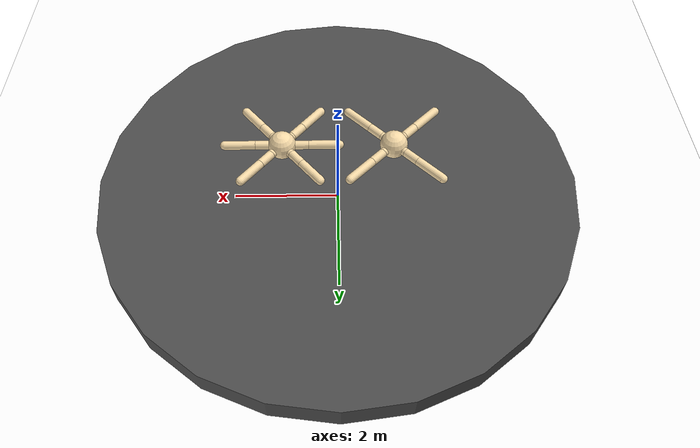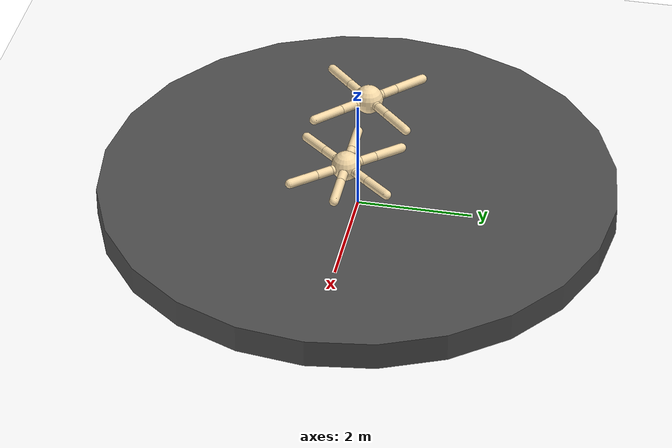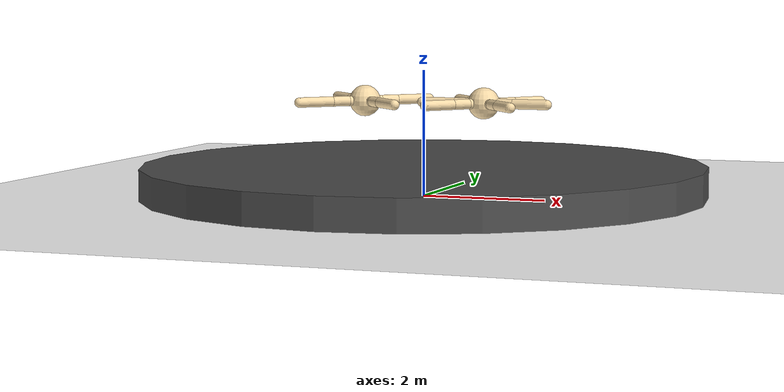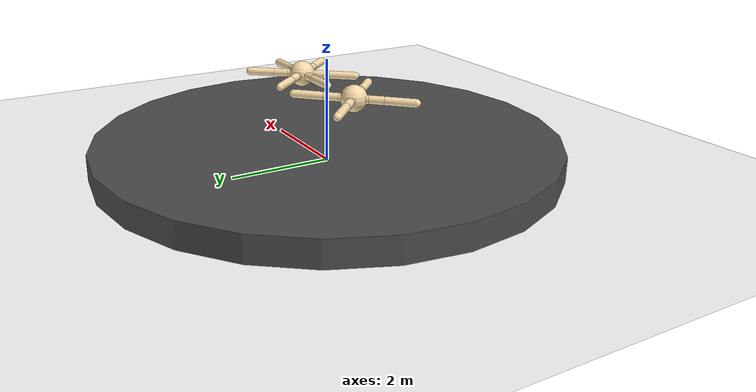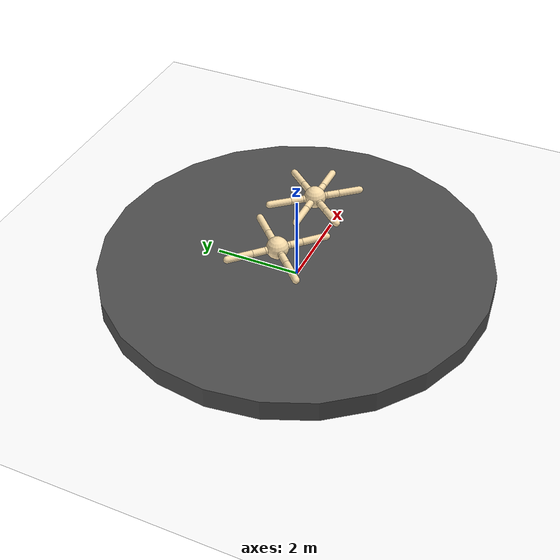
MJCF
<mujoco model="mutiagent_world">
  <compiler angle="degree" coordinate="local" inertiafromgeom="true" />
  <option integrator="RK4" timestep="0.003" solver="PGS" iterations="1000" />
  <default>
    <joint armature="1" damping="1" limited="true" />
  <default class="agent0"><joint armature="1" damping="1" limited="true" />
    <geom conaffinity="0" condim="3" density="5.0" friction="1 0.5 0.5" margin="0.01" rgba="0.98 0.87 0.67 1" material="geom" contype="1" />
    <motor ctrllimited="true" ctrlrange="-.4 .4" />
</default><default class="agent1"><geom conaffinity="1" condim="3" density="5.0" friction="1 0.5 0.5" margin="0.01" rgba="0.98 0.87 0.67 1" material="geom" contype="0" />
    <motor ctrllimited="true" ctrlrange="-1. 1." />
    <joint armature="1" damping="1" limited="true" />
  </default></default>
  <visual>
    <headlight ambient=".1 .1 .1" diffuse=".6 .6 .6" specular="0.3 0.3 0.3" />
    <map znear=".01" />
    <quality shadowsize="16384" />
  </visual>
  <asset>
    <texture builtin="gradient" height="100" rgb1="1 1 1" rgb2="0 0 0" type="skybox" width="100" />
    <texture builtin="flat" height="1278" mark="cross" markrgb="0 0 0" name="texgeom" random="0.01" rgb1="0.8 0.6 0.4" rgb2="0.8 0.6 0.4" type="cube" width="127" />
    <texture builtin="checker" height="100" name="texplane" rgb1="0.5 0.5 0.5" rgb2="0.5 0.5 0.5" type="2d" width="100" markrgb="0.2 0.2 0.2" mark="edge" />
    <texture name="MatPlane" type="2d" builtin="checker" rgb1=".5 .5 .5" rgb2=".5 .5 .5" width="300" height="300" mark="edge" markrgb="0.1 0.1 0.1" />
    <material name="MatPlane" texture="MatPlane" texrepeat="2 2" texuniform="true" reflectance=".2" />
    <material name="geom" texture="texgeom" texuniform="true" />
  </asset>
  <worldbody>
    <light cutoff="100" diffuse="1 1 1" dir="-0 0 -1.3" directional="true" exponent="1" pos="0 0 1.3" specular=".1 .1 .1" />
    <geom contype="1" conaffinity="1" friction="1 .1 .1" condim="3" material="MatPlane" name="floor" pos="0 0 0" rgba="1 1 1 1" size="20 20 0.125" type="plane" />
    <geom fromto="4 -5 0  4 +5 0" name="rightgoal" rgba="0.6 0.0 0.0 0" size=".03" type="cylinder" />
    <geom fromto="-4 -5 0  -4 +5 0" name="leftgoal" rgba="0.6 0.0 0.0 0" size=".03" type="cylinder" />
    <geom conaffinity="1" condim="3" contype="1" friction="1 .1 .1" name="arena" size="4.5 .25" type="cylinder" pos="0 0 0.25" rgba="0.3 0.3 0.3 1" />
  <body name="agent0/torso" pos="-1 0 1.5" euler="0 0 0">
  <geom name="agent0/torso_geom" pos="0 0 0" size="0.25" type="sphere" class="agent0" />
  <joint armature="0" damping="0" limited="false" margin="0.01" name="agent0/root" pos="0 0 0" range="-30 30" type="free" />
  <body name="agent0/front_left_leg" pos="0 0 0">
    <geom fromto="0.0 0.0 0.0 0.2 0.2 0.0" name="agent0/aux_1_geom" size="0.08" type="capsule" class="agent0" />
    <body name="agent0/aux_1" pos="0.2 0.2 0">
      <joint axis="0 0 1" name="agent0/hip_1" pos="0.0 0.0 0.0" range="-30 30" type="hinge" />
      <geom fromto="0.0 0.0 0.0 0.2 0.2 0.0" name="agent0/left_leg_geom" size="0.08" type="capsule" class="agent0" />
      <body pos="0.2 0.2 0" name="agent0/anon1934879561">
        <joint axis="-1 1 0" name="agent0/ankle_1" pos="0.0 0.0 0.0" range="30 70" type="hinge" />
        <geom fromto="0.0 0.0 0.0 0.4 0.4 0.0" name="agent0/left_ankle_geom" size="0.08" type="capsule" class="agent0" />
      </body>
    </body>
  </body>
  <body name="agent0/front_right_leg" pos="0 0 0">
    <geom fromto="0.0 0.0 0.0 -0.2 0.2 0.0" name="agent0/aux_2_geom" size="0.08" type="capsule" class="agent0" />
    <body name="agent0/aux_2" pos="-0.2 0.2 0">
      <joint axis="0 0 1" name="agent0/hip_2" pos="0.0 0.0 0.0" range="-30 30" type="hinge" />
      <geom fromto="0.0 0.0 0.0 -0.2 0.2 0.0" name="agent0/right_leg_geom" size="0.08" type="capsule" class="agent0" />
      <body pos="-0.2 0.2 0" name="agent0/anon8646907154">
        <joint axis="1 1 0" name="agent0/ankle_2" pos="0.0 0.0 0.0" range="-70 -30" type="hinge" />
        <geom fromto="0.0 0.0 0.0 -0.4 0.4 0.0" name="agent0/right_ankle_geom" size="0.08" type="capsule" class="agent0" />
      </body>
    </body>
  </body>
  <body name="agent0/back_leg" pos="0 0 0">
    <geom fromto="0.0 0.0 0.0 -0.2 -0.2 0.0" name="agent0/aux_3_geom" size="0.08" type="capsule" class="agent0" />
    <body name="agent0/aux_3" pos="-0.2 -0.2 0">
      <joint axis="0 0 1" name="agent0/hip_3" pos="0.0 0.0 0.0" range="-30 30" type="hinge" />
      <geom fromto="0.0 0.0 0.0 -0.2 -0.2 0.0" name="agent0/back_leg_geom" size="0.08" type="capsule" class="agent0" />
      <body pos="-0.2 -0.2 0" name="agent0/anon5950318586">
        <joint axis="-1 1 0" name="agent0/ankle_3" pos="0.0 0.0 0.0" range="-70 -30" type="hinge" />
        <geom fromto="0.0 0.0 0.0 -0.4 -0.4 0.0" name="agent0/third_ankle_geom" size="0.08" type="capsule" class="agent0" />
      </body>
    </body>
  </body>
  <body name="agent0/right_back_leg" pos="0 0 0">
    <geom fromto="0.0 0.0 0.0 0.2 -0.2 0.0" name="agent0/aux_4_geom" size="0.08" type="capsule" class="agent0" />
    <body name="agent0/aux_4" pos="0.2 -0.2 0">
      <joint axis="0 0 1" name="agent0/hip_4" pos="0.0 0.0 0.0" range="-30 30" type="hinge" />
      <geom fromto="0.0 0.0 0.0 0.2 -0.2 0.0" name="agent0/rightback_leg_geom" size="0.08" type="capsule" class="agent0" />
      <body pos="0.2 -0.2 0" name="agent0/anon68574554">
        <joint axis="1 1 0" name="agent0/ankle_4" pos="0.0 0.0 0.0" range="30 70" type="hinge" />
        <geom fromto="0.0 0.0 0.0 0.4 -0.4 0.0" name="agent0/fourth_ankle_geom" size="0.08" type="capsule" class="agent0" />
      </body>
    </body>
  </body>
</body>

<body name="agent1/0" pos="1 0 1.5" euler="0 0 180">
      <geom pos="0 0 0" size="0.25" type="sphere" class="agent1" name="agent1/anon991681410" />
      <joint armature="0" damping="0" limited="false" margin="0.01" name="agent1/0_joint" pos="0 0 0" type="free" />

      <body name="agent1/1" pos="0 0 0">
        <geom fromto="0 0 0 0.18 0.215 0" size="0.08" type="capsule" class="agent1" name="agent1/anon3578544904" />
        <body name="agent1/11" pos="0.18 0.215 0">
          <joint axis="0 0 1" name="agent1/11_joint" pos="0 0 0" range="-30 30" type="hinge" />
          <geom fromto="0 0 0 0.18 0.215 0" size="0.08" type="capsule" class="agent1" name="agent1/anon9334530083" />
          <body name="agent1/111" pos="0.18 0.215 0">
            <joint axis="-1 1 0" name="agent1/111_joint" pos="0 0 0" range="30 70" type="hinge" />
            <geom fromto="0 0 0 0.324 0.387 0" size="0.08" type="capsule" class="agent1" name="agent1/anon5974559825" />
          </body>
        </body>
      </body>

      <body name="agent1/2" pos="0 0 0">
        <geom fromto="0 0 0 -0.18 0.215 0" size="0.08" type="capsule" class="agent1" name="agent1/anon6120997886" />
        <body name="agent1/12" pos="-0.18 0.215 0">
          <joint axis="0 0 1" name="agent1/12_joint" pos="0 0 0" range="-30 30" type="hinge" />
          <geom fromto="0 0 0 -0.18 0.215 0" size="0.08" type="capsule" class="agent1" name="agent1/anon5188069942" />
          <body name="agent1/112" pos="-0.18 0.215 0">
            <joint axis="1 1 0" name="agent1/112_joint" pos="0 0 0" range="-70 -30" type="hinge" />
            <geom fromto="0 0 0 -0.324 0.387 0" size="0.08" type="capsule" class="agent1" name="agent1/anon6733221636" />
          </body>
        </body>
      </body>

      <body name="agent1/3" pos="0 0 0">
        <geom fromto="0 0 0 -0.2 0 0" size="0.08" type="capsule" class="agent1" name="agent1/anon4429456861" />
        <body name="agent1/13" pos="-0.2 0 0">
          <joint axis="0 0 1" name="agent1/13_joint" pos="0 0 0" range="-30 30" type="hinge" />
          <geom fromto="0 0 0 -0.275 0 0" size="0.08" type="capsule" class="agent1" name="agent1/anon6226646572" />
          <body name="agent1/113" pos="-0.275 0 0">
            <joint axis="0 1 0" name="agent1/113_joint" pos="0 0 0" range="-70 -30" type="hinge" />
            <geom fromto="0 0 0 -0.55 0 0" size="0.08" type="capsule" class="agent1" name="agent1/anon5992124618" />
          </body>
        </body>
      </body>

      <body name="agent1/4" pos="0 0 0">
        <geom fromto="0 0 0 0.2 0 0" size="0.08" type="capsule" class="agent1" name="agent1/anon8274936804" />
        <body name="agent1/14" pos="0.2 0 0">
          <joint axis="0 0 1" name="agent1/14_joint" pos="0 0 0" range="-30 30" type="hinge" />
          <geom fromto="0 0 0 0.275 0 0" size="0.08" type="capsule" class="agent1" name="agent1/anon7418576735" />
          <body name="agent1/114" pos="0.275 0 0">
            <joint axis="0 1 0" name="agent1/114_joint" pos="0 0 0" range="30 70" type="hinge" />
            <geom fromto="0 0 0 0.55 0 0" size="0.08" type="capsule" class="agent1" name="agent1/anon4128202430" />
          </body>
        </body>
      </body>

      <body name="agent1/5" pos="0 0 0">
        <geom fromto="0 0 0 -0.18 -0.215 0" size="0.08" type="capsule" class="agent1" name="agent1/anon6612927343" />
        <body name="agent1/15" pos="-0.18 -0.215 0">
          <joint axis="0 0 1" name="agent1/15_joint" pos="0 0 0" range="-30 30" type="hinge" />
          <geom fromto="0 0 0 -0.18 -0.215 0" size="0.08" type="capsule" class="agent1" name="agent1/anon2520077080" />
          <body name="agent1/115" pos="-0.18 -0.215 0">
            <joint axis="-1 1 0" name="agent1/115_joint" pos="0 0 0" range="-70 -30" type="hinge" />
            <geom fromto="0 0 0 -0.324 -0.387 0" size="0.08" type="capsule" class="agent1" name="agent1/anon8440707289" />
          </body>
        </body>
      </body>

      <body name="agent1/6" pos="0 0 0">
        <geom fromto="0 0 0 0.18 -0.215 0" size="0.08" type="capsule" class="agent1" name="agent1/anon1272485021" />
        <body name="agent1/16" pos="0.18 -0.215 0">
          <joint axis="0 0 1" name="agent1/16_joint" pos="0 0 0" range="-30 30" type="hinge" />
          <geom fromto="0 0 0 0.18 -0.215 0" size="0.08" type="capsule" class="agent1" name="agent1/anon9299750701" />
          <body name="agent1/116" pos="0.18 -0.215 0">
            <joint axis="1 1 0" name="agent1/116_joint" pos="0 0 0" range="30 70" type="hinge" />
            <geom fromto="0 0 0 0.324 -0.387 0" size="0.08" type="capsule" class="agent1" name="agent1/anon67157849" />
          </body>
        </body>
      </body>
    </body>

  </worldbody>
<actuator>
  <motor ctrllimited="true" ctrlrange="-1.0 1.0" joint="agent0/hip_4" gear="150" class="agent0" />
  <motor ctrllimited="true" ctrlrange="-1.0 1.0" joint="agent0/ankle_4" gear="150" class="agent0" />
  <motor ctrllimited="true" ctrlrange="-1.0 1.0" joint="agent0/hip_1" gear="150" class="agent0" />
  <motor ctrllimited="true" ctrlrange="-1.0 1.0" joint="agent0/ankle_1" gear="150" class="agent0" />
  <motor ctrllimited="true" ctrlrange="-1.0 1.0" joint="agent0/hip_2" gear="150" class="agent0" />
  <motor ctrllimited="true" ctrlrange="-1.0 1.0" joint="agent0/ankle_2" gear="150" class="agent0" />
  <motor ctrllimited="true" ctrlrange="-1.0 1.0" joint="agent0/hip_3" gear="150" class="agent0" />
  <motor ctrllimited="true" ctrlrange="-1.0 1.0" joint="agent0/ankle_3" gear="150" class="agent0" />
<motor ctrllimited="true" ctrlrange="-1.0 1.0" joint="agent1/11_joint" gear="150" name="agent1/11_joint" class="agent1" />
    <motor ctrllimited="true" ctrlrange="-1.0 1.0" joint="agent1/111_joint" gear="150" name="agent1/111_joint" class="agent1" />
    <motor ctrllimited="true" ctrlrange="-1.0 1.0" joint="agent1/12_joint" gear="150" name="agent1/12_joint" class="agent1" />
    <motor ctrllimited="true" ctrlrange="-1.0 1.0" joint="agent1/112_joint" gear="150" name="agent1/112_joint" class="agent1" />
    <motor ctrllimited="true" ctrlrange="-1.0 1.0" joint="agent1/13_joint" gear="150" name="agent1/13_joint" class="agent1" />
    <motor ctrllimited="true" ctrlrange="-1.0 1.0" joint="agent1/113_joint" gear="150" name="agent1/113_joint" class="agent1" />
    <motor ctrllimited="true" ctrlrange="-1.0 1.0" joint="agent1/14_joint" gear="150" name="agent1/14_joint" class="agent1" />
    <motor ctrllimited="true" ctrlrange="-1.0 1.0" joint="agent1/114_joint" gear="150" name="agent1/114_joint" class="agent1" />
    <motor ctrllimited="true" ctrlrange="-1.0 1.0" joint="agent1/15_joint" gear="150" name="agent1/15_joint" class="agent1" />
    <motor ctrllimited="true" ctrlrange="-1.0 1.0" joint="agent1/115_joint" gear="150" name="agent1/115_joint" class="agent1" />
    <motor ctrllimited="true" ctrlrange="-1.0 1.0" joint="agent1/16_joint" gear="150" name="agent1/16_joint" class="agent1" />
    <motor ctrllimited="true" ctrlrange="-1.0 1.0" joint="agent1/116_joint" gear="150" name="agent1/116_joint" class="agent1" />
  </actuator>

</mujoco>
